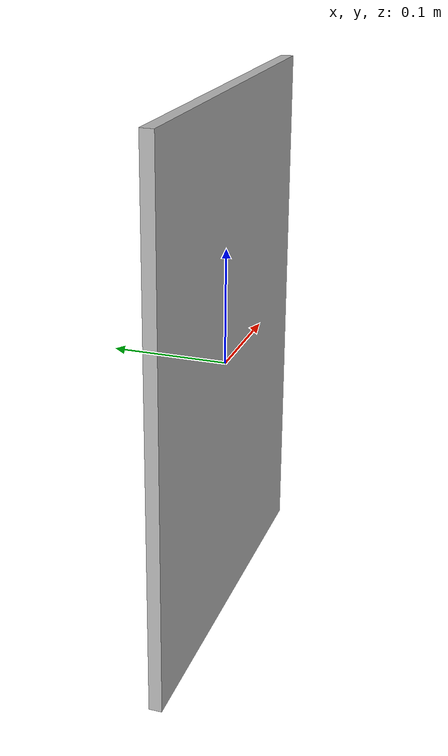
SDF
<?xml version="1.0" ?>
<sdf version="1.5">
  <model name="Sheep1">
    <static>true</static>
    <link name="link">
      <pose>0 0 0 0 0 0</pose>
      <collision name="collision">
        <geometry>
          <box>
            <size>.343 0.011 .462</size>
          </box>
        </geometry>
      </collision>
      <visual name="visual">
        <cast_shadows>false</cast_shadows>
        <geometry>
          <box>
            <size>.343 0.011 .462</size>
          </box>
        </geometry>
        <material>
          <script>
            <uri>model://Sheep1/materials/scripts</uri>
            <uri>model://Sheep1/materials/textures</uri>
            <name>vrc/Sheep1</name>
          </script>
        </material>
      </visual>
    </link>
  </model>
</sdf>
